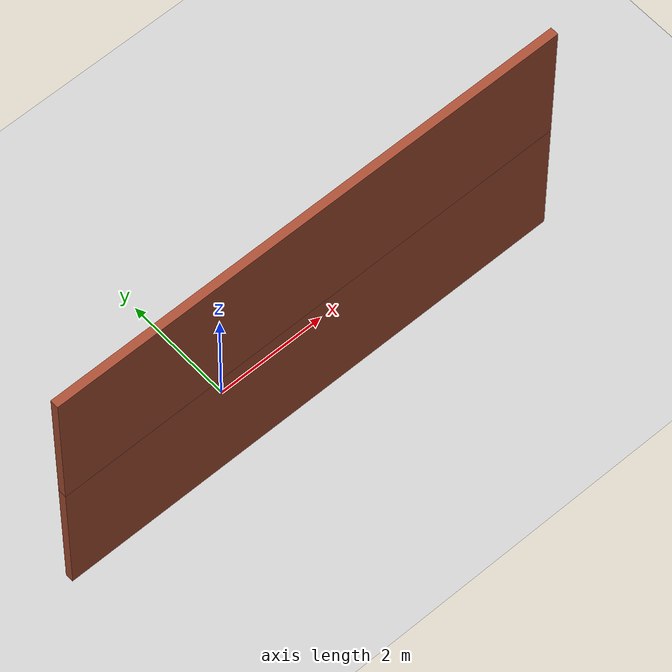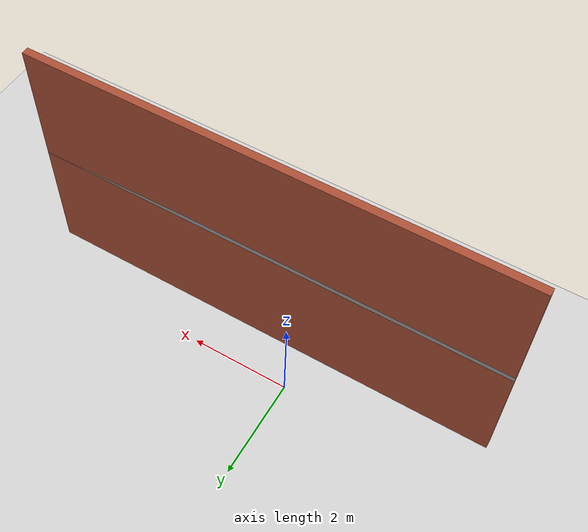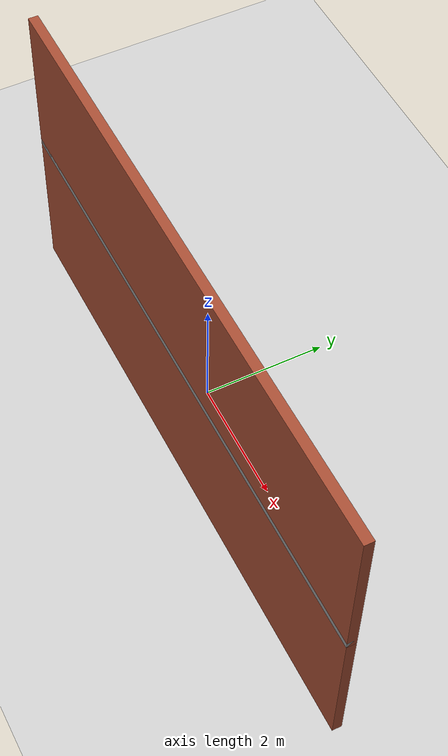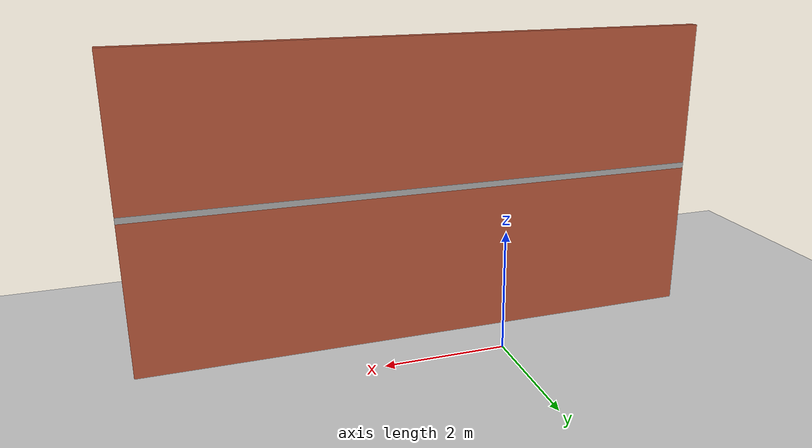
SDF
<sdf version="1.7">
 <world name="default">
  <light name="sun" type="directional">
   <pose>0 0 10 0 -0 0</pose>
   <diffuse>0.8 0.8 0.8 1</diffuse>
   <specular>0.2 0.2 0.2 1</specular>
   <attenuation>
    <range>1000</range>
    <constant>0.9</constant>
    <linear>0.01</linear>
    <quadratic>0.001</quadratic>
   </attenuation>
   <direction>-0.5 0.1 -0.9</direction>
   <spot><inner_angle>0</inner_angle><outer_angle>0</outer_angle><falloff>0</falloff></spot>
  </light>
  <model name="ground_plane">
   <static>1</static>
   <link name="link">
    <collision name="collision">
     <geometry><plane><normal>0 0 1</normal><size>100 100</size></plane></geometry>
     <surface>
      <contact><collide_bitmask>65535</collide_bitmask></contact>
      <friction><ode><mu>100</mu><mu2>50</mu2></ode></friction>
     </surface>
    </collision>
    <visual name="visual">
     <cast_shadows>0</cast_shadows>
     <geometry><plane><normal>0 0 1</normal><size>100 100</size></plane></geometry>
     <material>
      <script><uri>file://media/materials/scripts/gazebo.material</uri><name>Gazebo/Grey</name></script>
     </material>
    </visual>
   </link>
  </model>
  <gravity>0 0 -9.8</gravity>
  <magnetic_field>6e-06 2.3e-05 -4.2e-05</magnetic_field>
  <atmosphere type="adiabatic"/>
  <physics type="ode">
   <max_step_size>0.001</max_step_size>
   <real_time_factor>1</real_time_factor>
   <real_time_update_rate>1000</real_time_update_rate>
  </physics>
  <scene><ambient>0.4 0.4 0.4 1</ambient><background>0.7 0.7 0.7 1</background><shadows>1</shadows></scene>
  <spherical_coordinates>
   <surface_model>EARTH_WGS84</surface_model>
   <latitude_deg>0</latitude_deg>
   <longitude_deg>0</longitude_deg>
   <elevation>0</elevation>
   <heading_deg>0</heading_deg>
  </spherical_coordinates>
  <model name="robot1_world">
   <pose>0.982928 -0.490117 0 0 -0 0</pose>
   <link name="Floor_4">
    <collision name="Floor_4_Collision">
     <geometry><box><size>9.5 0.15 0.1</size></box></geometry>
     <pose>0 0 0.05 0 -0 0</pose>
    </collision>
    <visual name="Floor_4_Visual">
     <pose>0 0 0.05 0 -0 0</pose>
     <geometry><box><size>9.5 0.15 0.1</size></box></geometry>
     <material>
      <script><uri>file://media/materials/scripts/gazebo.material</uri><name>Gazebo/Grey</name></script>
      <ambient>1 1 1 1</ambient>
     </material>
     <meta><layer>1</layer></meta>
    </visual>
    <pose>-0 -0.415117 2.5 0 -0 0</pose>
   </link>
   <link name="Wall_14">
    <collision name="Wall_14_Collision">
     <geometry><box><size>9.5 0.15 2.5</size></box></geometry>
     <pose>0 0 1.25 0 -0 0</pose>
    </collision>
    <visual name="Wall_14_Visual">
     <pose>0 0 1.25 0 -0 0</pose>
     <geometry><box><size>9.5 0.15 2.5</size></box></geometry>
     <material>
      <script><uri>file://media/materials/scripts/gazebo.material</uri><name>Gazebo/Bricks</name></script>
      <ambient>1 1 1 1</ambient>
     </material>
     <meta><layer>1</layer></meta>
    </visual>
    <pose>-0 -0.415117 2.5 0 -0 0</pose>
   </link>
   <link name="Wall_8">
    <collision name="Wall_8_Collision">
     <geometry><box><size>9.5 0.15 2.5</size></box></geometry>
     <pose>0 0 1.25 0 -0 0</pose>
    </collision>
    <visual name="Wall_8_Visual">
     <pose>0 0 1.25 0 -0 0</pose>
     <geometry><box><size>9.5 0.15 2.5</size></box></geometry>
     <material>
      <script><uri>file://media/materials/scripts/gazebo.material</uri><name>Gazebo/Bricks</name></script>
      <ambient>1 0.764706 0.305882 1</ambient>
     </material>
     <meta><layer>0</layer></meta>
    </visual>
    <pose>-0 -0.415117 0 0 -0 0</pose>
   </link>
   <static>1</static>
  </model>
 </world>
</sdf>
